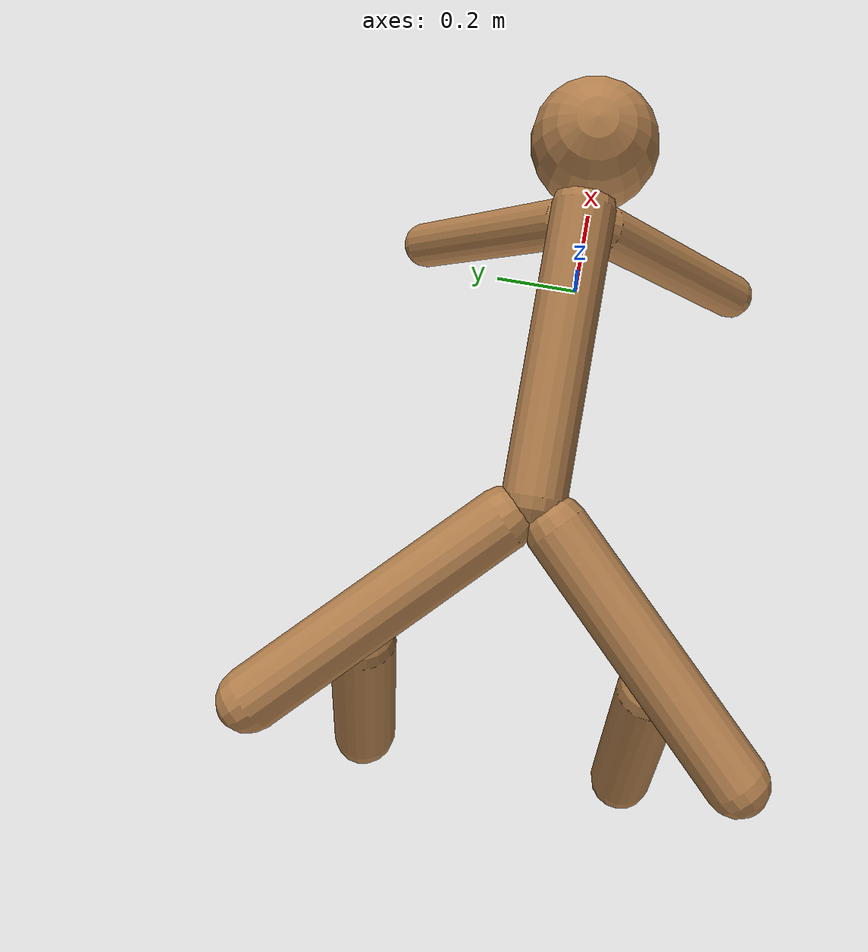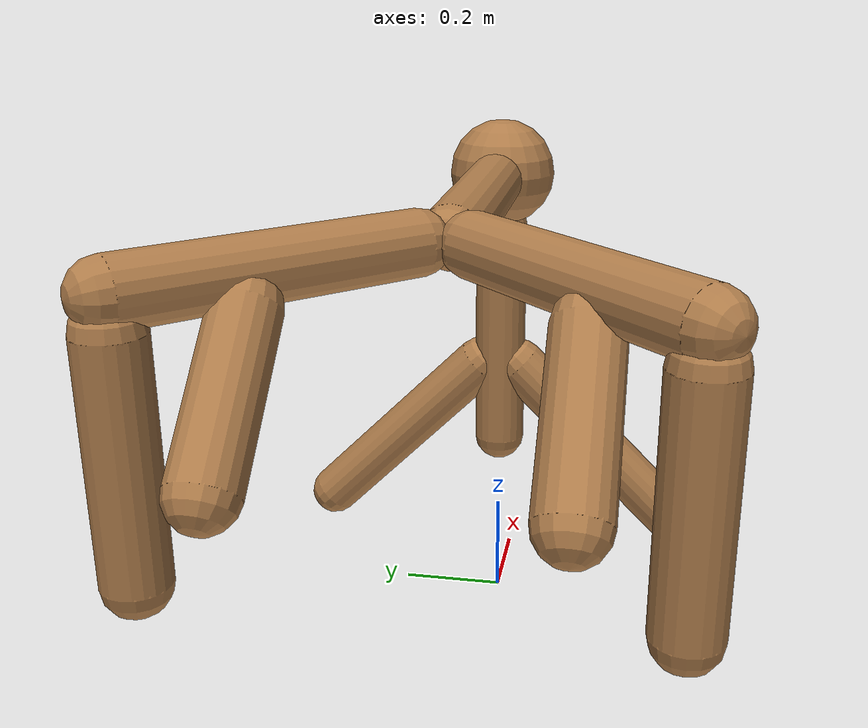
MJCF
<?xml version='1.0' encoding='UTF-8'?>
<!-- Universal Animal Template: unimal -->
<mujoco model="unimal">
  <compiler angle="degree"/>
  <size njmax="2000" nconmax="500"/>
  <option timestep=".005">
    <flag filterparent="disable"/>
  </option>
  <!-- Common defaults to make search space tractable -->
  <default>
    <!-- Define motor defaults -->
    <motor ctrlrange="-1 1" ctrllimited="true"/>
    <!-- Define joint defaults -->
    <default class="normal_joint">
      <joint type="hinge" damping="1" stiffness="1" armature="1" limited="true" range="-120 120" solimplimit="0 0.99 0.01"/>
    </default>
    <default class="walker_joint">
      <joint type="hinge" damping="0.2" stiffness="1" armature=".01" limited="true" range="-120 120" solimplimit="0 0.99 0.01"/>
    </default>
    <default class="stiff_joint">
      <joint type="hinge" damping="5" stiffness="10" armature=".01" limited="true" solimplimit="0 0.99 0.01"/>
    </default>
    <default class="free">
      <joint limited="false" damping="0" armature="0" stiffness="0"/>
    </default>
    <default class="growth_site">
      <site size="1e-6 1e-6 1e-6"/>
    </default>
    <default class="torso_growth_site">
      <site size="1e-6 1e-6 1e-6"/>
    </default>
    <default class="mirror_growth_site">
      <site size="1e-6 1e-6 1e-6"/>
    </default>
    <default class="btm_pos_site">
      <site size="1e-6 1e-6 1e-6"/>
    </default>
    <default class="box_face_site">
      <site size="1e-6 1e-6 1e-6"/>
    </default>
    <default class="imu_vel">
      <site type="box" size="0.05" rgba="1 0 0 1"/>
    </default>
    <default class="touch_site">
      <site group="3" rgba="0 0 1 .3"/>
    </default>
    <default class="food_site">
      <site material="food" size="0.15"/>
    </default>
    <!-- Define geom defaults -->
    <geom type="capsule" condim="3" friction="0.7 0.1 0.1" material="self"/>
  </default>
  <worldbody>
    <light diffuse="1 1 1" directional="true" exponent="1" pos="0 0 1" specular=".1 .1 .1"/>
    <!-- Programatically generated xml goes here -->
    <body name="torso/0" pos="0 0 0.91">
      <joint name="root" type="free" class="free"/>
      <site name="root" class="imu_vel"/>
      <geom name="torso/0" type="sphere" size="0.1" condim="3" density="600"/>
      <camera name="side" pos="0 -7 2" xyaxes="1 0 0 0 1 2" mode="trackcom"/>
      <site name="torso/0" class="growth_site" pos="0 0 0"/>
      <site name="torso/btm_pos/0" class="btm_pos_site" pos="0 0 -0.1"/>
      <site name="torso/touch/0" class="touch_site" size="0.11"/>
      <site name="torso/vertical/0" class="torso_growth_site" pos="0 0 -0.1"/>
      <body name="limb/0" pos="0.0 0.0 -0.1">
        <joint name="limby/0" type="hinge" class="normal_joint" range="0 90" pos="0.0 0.0 0.05" axis="0.0 1.0 0.0"/>
        <geom name="limb/0" type="capsule" fromto="0.0 0.0 0.0 0.0 0.0 -0.45" size="0.05" density="1000"/>
        <site name="limb/mid/0" class="growth_site" pos="0.0 0.0 -0.25"/>
        <site name="limb/btm/0" class="growth_site" pos="0.0 0.0 -0.45"/>
        <site name="limb/btm_pos/0" class="btm_pos_site" pos="0.0 0.0 -0.45"/>
        <site name="limb/touch/0" class="touch_site" size="0.060000000000000005" fromto="0.0 0.0 0.0 0.0 0.0 -0.45" type="capsule"/>
        <body name="limb/5" pos="0.0 0.04 -0.29">
          <joint name="limbx/5" type="hinge" class="normal_joint" range="-60 30" pos="0.0 -0.04 0.04" axis="1.0 0.0 0.0"/>
          <joint name="limby/5" type="hinge" class="normal_joint" range="-60 0" pos="0.0 -0.04 0.04" axis="0.0 0.7071 0.7071"/>
          <geom name="limb/5" type="capsule" fromto="0.0 0.0 0.0 0.0 0.32 -0.32" size="0.05" density="1000"/>
          <site name="limb/mid/5" class="mirror_growth_site" pos="0.0 0.18 -0.18"/>
          <site name="limb/btm/5" class="mirror_growth_site" pos="0.0 0.32 -0.32"/>
          <site name="limb/btm_pos/5" class="btm_pos_site" pos="0.0 0.32 -0.32"/>
          <site name="limb/touch/5" class="touch_site" size="0.060000000000000005" fromto="0.0 0.0 0.0 0.0 0.32 -0.32" type="capsule"/>
        </body>
        <body name="limb/6" pos="0.0 -0.04 -0.29">
          <joint name="limbx/6" type="hinge" class="normal_joint" range="-60 30" pos="0.0 0.04 0.04" axis="1.0 0.0 -0.0"/>
          <joint name="limby/6" type="hinge" class="normal_joint" range="-60 0" pos="0.0 0.04 0.04" axis="-0.0 0.7071 -0.7071"/>
          <geom name="limb/6" type="capsule" fromto="0.0 0.0 0.0 0.0 -0.32 -0.32" size="0.05" density="1000"/>
          <site name="limb/mid/6" class="mirror_growth_site" pos="0.0 -0.18 -0.18"/>
          <site name="limb/btm/6" class="mirror_growth_site" pos="0.0 -0.32 -0.32"/>
          <site name="limb/btm_pos/6" class="btm_pos_site" pos="0.0 -0.32 -0.32"/>
          <site name="limb/touch/6" class="touch_site" size="0.060000000000000005" fromto="0.0 0.0 0.0 0.0 -0.32 -0.32" type="capsule"/>
        </body>
      </body>
      <body name="limb/1" pos="-0.1 0.0 0.0">
        <joint name="limbx/1" type="hinge" class="normal_joint" range="0 90" pos="0.05 0.0 0.0" axis="0.0 0.0 -1.0"/>
        <geom name="limb/1" type="capsule" fromto="0.0 0.0 0.0 -0.45 0.0 0.0" size="0.05" density="1000"/>
        <site name="limb/mid/1" class="growth_site" pos="-0.25 0.0 0.0"/>
        <site name="limb/btm/1" class="growth_site" pos="-0.45 0.0 0.0"/>
        <site name="limb/btm_pos/1" class="btm_pos_site" pos="-0.45 0.0 0.0"/>
        <site name="limb/touch/1" class="touch_site" size="0.060000000000000005" fromto="0.0 0.0 0.0 -0.45 0.0 0.0" type="capsule"/>
        <body name="limb/3" pos="-0.49 0.04 0.0">
          <joint name="limbx/3" type="hinge" class="normal_joint" range="-30 0" pos="0.04 -0.04 0.0" axis="0.5 0.5 -0.7071"/>
          <geom name="limb/3" type="capsule" fromto="0.0 0.0 0.0 -0.32 0.32 0.0" size="0.05" density="1000"/>
          <site name="limb/mid/3" class="mirror_growth_site" pos="-0.18 0.18 0.0"/>
          <site name="limb/btm/3" class="mirror_growth_site" pos="-0.32 0.32 0.0"/>
          <site name="limb/btm_pos/3" class="btm_pos_site" pos="-0.32 0.32 0.0"/>
          <site name="limb/touch/3" class="touch_site" size="0.060000000000000005" fromto="0.0 0.0 0.0 -0.32 0.32 0.0" type="capsule"/>
          <body name="limb/7" pos="-0.32 0.32 -0.05">
            <joint name="limbx/7" type="hinge" class="normal_joint" range="0 60" pos="0.0 0.0 0.05" axis="1.0 0.0 0.0"/>
            <joint name="limby/7" type="hinge" class="normal_joint" range="-60 30" pos="0.0 0.0 0.05" axis="0.0 1.0 0.0"/>
            <geom name="limb/7" type="capsule" fromto="0.0 0.0 0.0 0.0 0.0 -0.35" size="0.05" density="1000"/>
            <site name="limb/mid/7" class="mirror_growth_site" pos="0.0 0.0 -0.2"/>
            <site name="limb/btm/7" class="mirror_growth_site" pos="0.0 0.0 -0.35"/>
            <site name="limb/btm_pos/7" class="btm_pos_site" pos="0.0 0.0 -0.4"/>
            <site name="limb/touch/7" class="touch_site" size="0.060000000000000005" fromto="0.0 0.0 0.0 0.0 0.0 -0.35" type="capsule"/>
          </body>
          <body name="limb/9" pos="-0.22 0.18 -0.04">
            <joint name="limbx/9" type="hinge" class="normal_joint" range="0 90" pos="0.04 0.0 0.04" axis="0.7071 0.0 -0.7071"/>
            <joint name="limby/9" type="hinge" class="normal_joint" range="-30 0" pos="0.04 0.0 0.04" axis="0.0 1.0 0.0"/>
            <geom name="limb/9" type="capsule" fromto="0.0 0.0 0.0 -0.18 0.0 -0.18" size="0.05" density="1000.0"/>
            <site name="limb/mid/9" class="mirror_growth_site" pos="-0.11 0.0 -0.11"/>
            <site name="limb/btm/9" class="mirror_growth_site" pos="-0.18 0.0 -0.18"/>
            <site name="limb/btm_pos/9" class="btm_pos_site" pos="-0.21 0.0 -0.21"/>
            <site name="limb/touch/9" class="touch_site" size="0.060000000000000005" fromto="0.0 0.0 0.0 -0.18 0.0 -0.18" type="capsule"/>
          </body>
        </body>
        <body name="limb/4" pos="-0.49 -0.04 0.0">
          <joint name="limbx/4" type="hinge" class="normal_joint" range="-30 0" pos="0.04 0.04 0.0" axis="0.5 -0.5 -0.7071"/>
          <geom name="limb/4" type="capsule" fromto="0.0 0.0 0.0 -0.32 -0.32 0.0" size="0.05" density="1000"/>
          <site name="limb/mid/4" class="mirror_growth_site" pos="-0.18 -0.18 0.0"/>
          <site name="limb/btm/4" class="mirror_growth_site" pos="-0.32 -0.32 0.0"/>
          <site name="limb/btm_pos/4" class="btm_pos_site" pos="-0.32 -0.32 0.0"/>
          <site name="limb/touch/4" class="touch_site" size="0.060000000000000005" fromto="0.0 0.0 0.0 -0.32 -0.32 0.0" type="capsule"/>
          <body name="limb/8" pos="-0.32 -0.32 -0.05">
            <joint name="limbx/8" type="hinge" class="normal_joint" range="0 60" pos="0.0 0.0 0.05" axis="1.0 0.0 0.0"/>
            <joint name="limby/8" type="hinge" class="normal_joint" range="-60 30" pos="0.0 0.0 0.05" axis="0.0 1.0 0.0"/>
            <geom name="limb/8" type="capsule" fromto="0.0 0.0 0.0 0.0 0.0 -0.35" size="0.05" density="1000"/>
            <site name="limb/mid/8" class="mirror_growth_site" pos="0.0 0.0 -0.2"/>
            <site name="limb/btm/8" class="mirror_growth_site" pos="0.0 0.0 -0.35"/>
            <site name="limb/btm_pos/8" class="btm_pos_site" pos="0.0 0.0 -0.4"/>
            <site name="limb/touch/8" class="touch_site" size="0.060000000000000005" fromto="0.0 0.0 0.0 0.0 0.0 -0.35" type="capsule"/>
          </body>
          <body name="limb/10" pos="-0.22 -0.18 -0.04">
            <joint name="limbx/10" type="hinge" class="normal_joint" range="0 90" pos="0.04 0.0 0.04" axis="0.7071 0.0 -0.7071"/>
            <joint name="limby/10" type="hinge" class="normal_joint" range="-30 0" pos="0.04 0.0 0.04" axis="0.0 1.0 0.0"/>
            <geom name="limb/10" type="capsule" fromto="0.0 0.0 0.0 -0.18 0.0 -0.18" size="0.05" density="1000.0"/>
            <site name="limb/mid/10" class="mirror_growth_site" pos="-0.11 0.0 -0.11"/>
            <site name="limb/btm/10" class="mirror_growth_site" pos="-0.18 0.0 -0.18"/>
            <site name="limb/btm_pos/10" class="btm_pos_site" pos="-0.21 0.0 -0.21"/>
            <site name="limb/touch/10" class="touch_site" size="0.060000000000000005" fromto="0.0 0.0 0.0 -0.18 0.0 -0.18" type="capsule"/>
          </body>
        </body>
      </body>
    </body>
  </worldbody>
  <actuator>
    <motor joint="limby/0" gear="250" name="limby/0"/>
    <motor joint="limbx/5" gear="150" name="limbx/5"/>
    <motor joint="limby/5" gear="200" name="limby/5"/>
    <motor joint="limbx/6" gear="150" name="limbx/6"/>
    <motor joint="limby/6" gear="200" name="limby/6"/>
    <motor joint="limbx/1" gear="300" name="limbx/1"/>
    <motor joint="limbx/3" gear="200" name="limbx/3"/>
    <motor joint="limbx/7" gear="250" name="limbx/7"/>
    <motor joint="limby/7" gear="150" name="limby/7"/>
    <motor joint="limbx/9" gear="250" name="limbx/9"/>
    <motor joint="limby/9" gear="150" name="limby/9"/>
    <motor joint="limbx/4" gear="200" name="limbx/4"/>
    <motor joint="limbx/8" gear="250" name="limbx/8"/>
    <motor joint="limby/8" gear="150" name="limby/8"/>
    <motor joint="limbx/10" gear="250" name="limbx/10"/>
    <motor joint="limby/10" gear="150" name="limby/10"/>
  </actuator>
  <sensor>
    <accelerometer name="torso_accel" site="root"/>
    <gyro name="torso_gyro" site="root"/>
    <velocimeter name="torso_vel" site="root"/>
    <subtreeangmom name="unimal_am" body="torso/0"/>
    <touch name="torso/0" site="torso/touch/0"/>
    <touch name="limb/0" site="limb/touch/0"/>
    <touch name="limb/5" site="limb/touch/5"/>
    <touch name="limb/6" site="limb/touch/6"/>
    <touch name="limb/1" site="limb/touch/1"/>
    <touch name="limb/3" site="limb/touch/3"/>
    <touch name="limb/7" site="limb/touch/7"/>
    <touch name="limb/9" site="limb/touch/9"/>
    <touch name="limb/4" site="limb/touch/4"/>
    <touch name="limb/8" site="limb/touch/8"/>
    <touch name="limb/10" site="limb/touch/10"/>
  </sensor>
  <!-- Add hfield assets -->
  <asset/>
  <!-- List of contacts to exclude -->
  <contact>
    <exclude name="limb/3:limb/4" body1="limb/3" body2="limb/4"/>
    <exclude name="limb/5:limb/6" body1="limb/5" body2="limb/6"/>
  </contact>
  <!-- Define material, texture etc -->
  <asset>
    <material name="grid" texture="grid" texrepeat="1 1" texuniform="true" reflectance="0"/>
    <material name="hfield" texture="hfield" texrepeat="1 1" texuniform="true" reflectance="0"/>
    <material name="wall" texture="wall" texrepeat="1 1" texuniform="true" reflectance=".5"/>
    <material name="platform" texture="platform" texrepeat="1 1" texuniform="true" reflectance=".5"/>
    <material name="boundary" texture="boundary" texrepeat="1 1" texuniform="true" reflectance=".5"/>
    <material name="jump" texture="jump" texrepeat="1 1" texuniform="true" reflectance=".5"/>
    <material name="goal" rgba="1 0 0 1"/>
    <material name="food" rgba="0 0 1 1" emission="1"/>
    <material name="self" rgba=".7 .5 .3 1"/>
    <material name="self_default" rgba=".7 .5 .3 1"/>
    <material name="self_highlight" rgba="0 .5 .3 1"/>
    <material name="effector" rgba=".7 .4 .2 1"/>
    <material name="effector_default" rgba=".7 .4 .2 1"/>
    <material name="effector_highlight" rgba="0 .5 .3 1"/>
    <material name="decoration" rgba=".3 .5 .7 1"/>
    <material name="eye" rgba="0 .2 1 1"/>
    <material name="target" rgba=".6 .3 .3 1"/>
    <material name="target_default" rgba=".6 .3 .3 1"/>
    <material name="target_highlight" rgba=".6 .3 .3 .4"/>
    <material name="site" rgba=".5 .5 .5 .3"/>
    <material name="ball" texture="ball"/>
  </asset>
  <asset>
    <texture name="grid" type="2d" builtin="checker" rgb1="0.1 0.1 0.1" rgb2="0.1 0.1 0.1" width="300" height="300" mark="edge" markrgb="0.2 0.2 0.2"/>
    <texture name="hfield" type="2d" builtin="checker" rgb1="0.1 0.1 0.1" rgb2="0.1 0.1 0.1" width="300" height="300"/>
    <texture name="wall" type="2d" builtin="flat" rgb1="0.9 0.7 0" rgb2="0.9 0.7 0" width="300" height="300"/>
    <texture name="platform" type="2d" builtin="flat" rgb1="0.3 0 0.8" rgb2="0.3 0 0.8" width="300" height="300"/>
    <texture name="boundary" type="2d" builtin="flat" rgb1="0.3 0.3 0.3" rgb2="0.3 0.3 0.3" width="300" height="300"/>
    <texture name="jump" type="2d" builtin="flat" rgb1="0.3 0.3 0.3" rgb2="0.3 0.3 0.3" width="300" height="300"/>
    <texture name="skybox" type="skybox" builtin="flat" rgb1="0.8 1 1" rgb2="0.8 1 1" width="800" height="800"/>
    <texture name="ball" builtin="checker" mark="cross" width="151" height="151" rgb1="0.1 0.1 0.1" rgb2="0.9 0.9 0.9" markrgb="1 1 1"/>
  </asset>
  <visual>
    <headlight ambient=".4 .4 .4" diffuse=".8 .8 .8" specular="0.1 0.1 0.1"/>
    <map znear=".01"/>
    <quality shadowsize="2048"/>
  </visual>
</mujoco>
